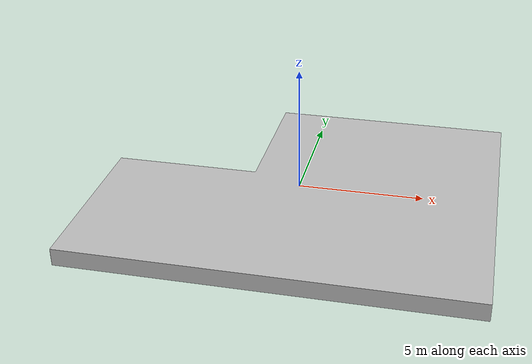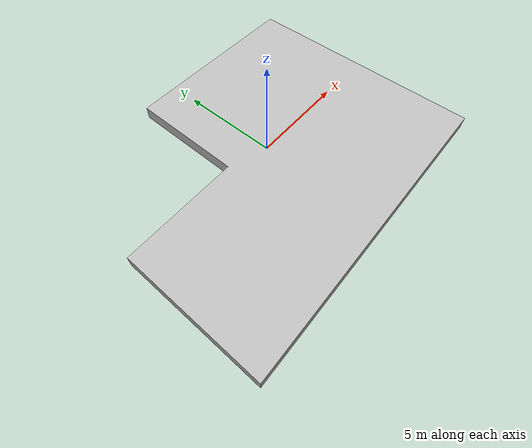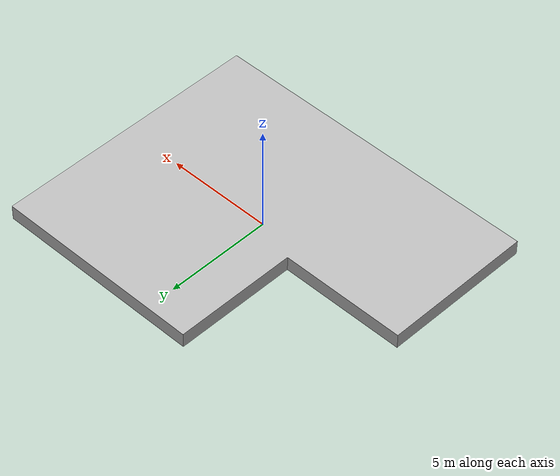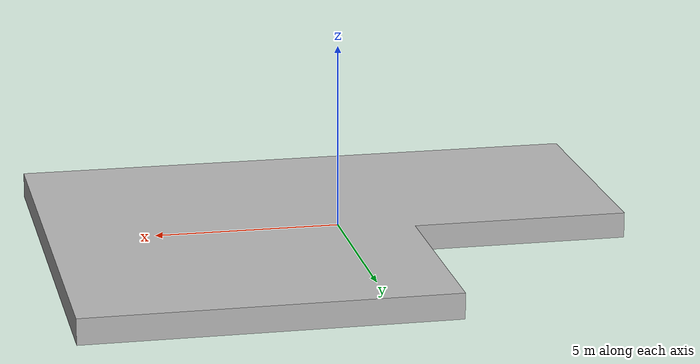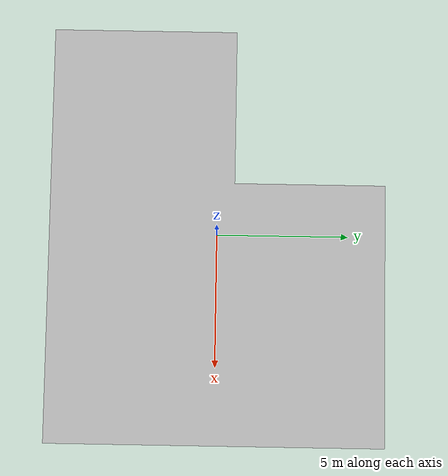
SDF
<?xml version="1.0"?>
<sdf version="1.5">
    <model name="natural_floor">
        <static>true</static>
        <link name="link">
            <collision name="collision">
                <pose>0 0 0.05 0 0 0</pose>
                <geometry>
                    <mesh>
                        <uri>model://natural_floor/meshes/floor.dae</uri>
                        <scale>1.0 1.0 1.0</scale>
                    </mesh>
                </geometry>
            </collision>
            <visual name="visual">
              <pose>0 0 0.05 0 0 0</pose>
              <geometry>
              <mesh>
                 <uri>model://natural_floor/meshes/floor.dae</uri>
                 <scale>1.0 1.0 1.0</scale>
              </mesh>
              </geometry>
             </visual>
        </link>
    </model>
</sdf>
